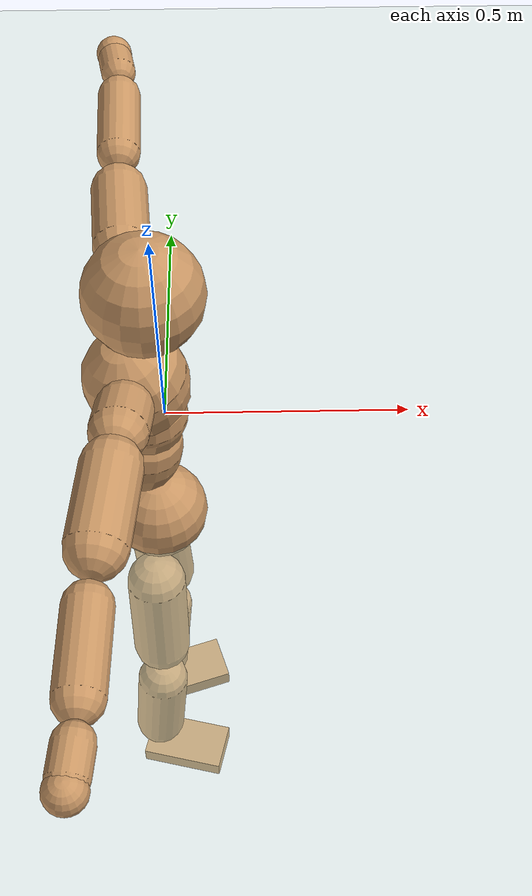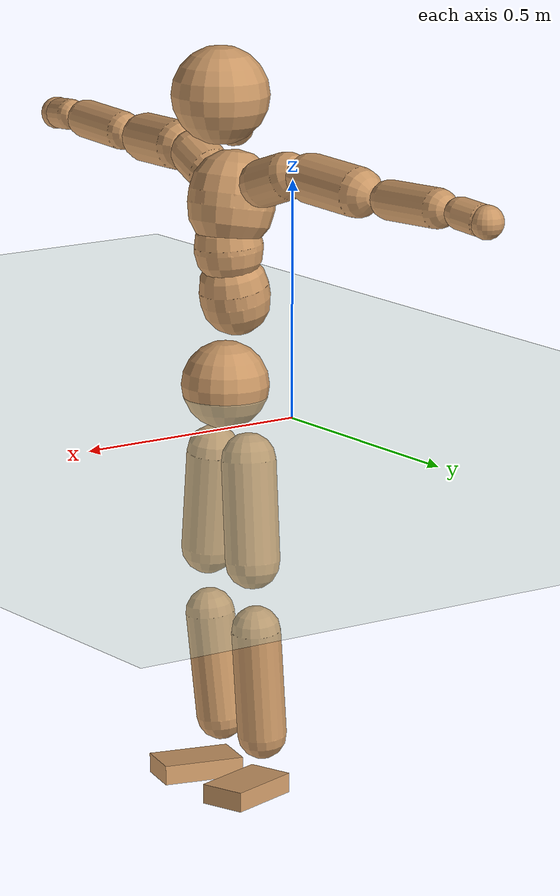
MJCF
<mujoco model="humanoid">
  <compiler coordinate="local"/>
  <default>
    <joint damping="0.0" armature="0.01" stiffness="0.0" limited="true"/>
    <geom conaffinity="1" condim="3" contype="7" margin="0.001" rgba="0.8 0.6 .4 1"/>
  </default>
  <asset>
    <texture type="skybox" builtin="gradient" rgb1=".4 .5 .6" rgb2="0 0 0" width="100" height="100"/>
    <texture builtin="flat" height="1278" mark="cross" markrgb="1 1 1" name="texgeom" random="0.01" rgb1="0.8 0.6 0.4" rgb2="0.8 0.6 0.4" type="cube" width="127"/>
    <texture builtin="checker" height="100" name="texplane" rgb1="0 0 0" rgb2="0.8 0.8 0.8" type="2d" width="100"/>
    <material name="MatPlane" reflectance="0.5" shininess="1" specular="1" texrepeat="60 60" texture="texplane"/>
    <material name="geom" texture="texgeom" texuniform="true"/>
  </asset>
  <worldbody>
    <light cutoff="100" diffuse="1 1 1" dir="-0 0 -1.3" directional="true" exponent="1" pos="0 0 1.3" specular=".1 .1 .1"/>
    <geom conaffinity="1" condim="3" name="floor" pos="0 0 0" rgba="0.8 0.9 0.8 1" size="100 100 .2" type="plane" material="MatPlane"/>
    <body name="Pelvis" pos="-0.0027 -0.25 0.023">
      <freejoint name="Pelvis"/>
      <geom type="sphere" contype="1" conaffinity="1" density="500" size="0.0940" pos="0.0000 0.0000 0.0000" name="Pelvis"/>
      <body name="L_Hip" pos="-0.0178 0.0556 -0.0817">
        <joint name="L_Hip_x" type="hinge" pos="0 0 0" axis="1 0 0" stiffness="800" damping="80" armature="0.02" range="-180.0000 180.0000"/>
        <joint name="L_Hip_y" type="hinge" pos="0 0 0" axis="0 1 0" stiffness="800" damping="80" armature="0.02" range="-180.0000 180.0000"/>
        <joint name="L_Hip_z" type="hinge" pos="0 0 0" axis="0 0 1" stiffness="800" damping="80" armature="0.02" range="-180.0000 180.0000"/>
        <geom type="capsule" contype="1" conaffinity="1" density="500" fromto="0.0019 0.0078 -0.0723 0.0078 0.0310 -0.2893" size="0.0588" name="L_Hip"/>
        <body name="L_Knee" pos="0.0097 0.0388 -0.3616">
          <joint name="L_Knee_x" type="hinge" pos="0 0 0" axis="1 0 0" stiffness="800" damping="80" armature="0.02" range="-180.0000 180.0000"/>
          <joint name="L_Knee_y" type="hinge" pos="0 0 0" axis="0 1 0" stiffness="800" damping="80" armature="0.02" range="-180.0000 180.0000"/>
          <joint name="L_Knee_z" type="hinge" pos="0 0 0" axis="0 0 1" stiffness="800" damping="80" armature="0.02" range="-180.0000 180.0000"/>
          <geom type="capsule" contype="1" conaffinity="1" density="500" fromto="-0.0072 -0.0029 -0.0791 -0.0289 -0.0115 -0.3163" size="0.053" name="L_Knee"/>
          <body name="L_Ankle" pos="-0.0361 -0.0144 -0.3954">
            <joint name="L_Ankle_x" type="hinge" pos="0 0 0" axis="1 0 0" stiffness="800" damping="80" armature="0.02" range="-180.0000 180.0000"/>
            <joint name="L_Ankle_y" type="hinge" pos="0 0 0" axis="0 1 0" stiffness="800" damping="80" armature="0.02" range="-180.0000 180.0000"/>
            <joint name="L_Ankle_z" type="hinge" pos="0 0 0" axis="0 0 1" stiffness="800" damping="80" armature="0.02" range="-180.0000 180.0000"/>
            <geom type="box" contype="1" conaffinity="1" density="500" pos="0.0594 0.0193 -0.0286" size="0.0858 0.0501 0.0213" quat="0.9877 0.0000 0.0000 0.1561" name="L_Ankle"/>
            <body name="L_Toe" pos="0.1189 0.0385 -0.0573">
              <joint name="L_Toe_x" type="hinge" pos="0 0 0" axis="1 0 0" stiffness="500" damping="50" armature="0.02" range="-180.0000 180.0000"/>
              <joint name="L_Toe_y" type="hinge" pos="0 0 0" axis="0 1 0" stiffness="500" damping="50" armature="0.02" range="-180.0000 180.0000"/>
              <joint name="L_Toe_z" type="hinge" pos="0 0 0" axis="0 0 1" stiffness="500" damping="50" armature="0.02" range="-180.0000 180.0000"/>
              <geom type="box" contype="1" conaffinity="1" density="500" pos="0.0000 0.0000 0.0279" size="0.0011 0.0025 0.001" quat="0.9869 0.0000 0.0000 0.1611" name="L_Toe"/>
            </body>
          </body>
        </body>
      </body>
      <body name="R_Hip" pos="-0.0135 -0.0573 -0.0902">
        <joint name="R_Hip_x" type="hinge" pos="0 0 0" axis="1 0 0" stiffness="800" damping="80" armature="0.02" range="-180.0000 180.0000"/>
        <joint name="R_Hip_y" type="hinge" pos="0 0 0" axis="0 1 0" stiffness="800" damping="80" armature="0.02" range="-180.0000 180.0000"/>
        <joint name="R_Hip_z" type="hinge" pos="0 0 0" axis="0 0 1" stiffness="800" damping="80" armature="0.02" range="-180.0000 180.0000"/>
        <geom type="capsule" contype="1" conaffinity="1" density="500" fromto="-0.0005 -0.0078 -0.0716 -0.0018 -0.0311 -0.2866" size="0.0583" name="R_Hip"/>
        <body name="R_Knee" pos="-0.0023 -0.0389 -0.3582">
          <joint name="R_Knee_x" type="hinge" pos="0 0 0" axis="1 0 0" stiffness="800" damping="80" armature="0.02" range="-180.0000 180.0000"/>
          <joint name="R_Knee_y" type="hinge" pos="0 0 0" axis="0 1 0" stiffness="800" damping="80" armature="0.02" range="-180.0000 180.0000"/>
          <joint name="R_Knee_z" type="hinge" pos="0 0 0" axis="0 0 1" stiffness="800" damping="80" armature="0.02" range="-180.0000 180.0000"/>
          <geom type="capsule" contype="1" conaffinity="1" density="500" fromto="-0.0067 0.0037 -0.0777 -0.0267 0.0148 -0.3107" size="0.0534" name="R_Knee"/>
          <body name="R_Ankle" pos="-0.0334 0.0184 -0.3883">
            <joint name="R_Ankle_x" type="hinge" pos="0 0 0" axis="1 0 0" stiffness="800" damping="80" armature="0.02" range="-180.0000 180.0000"/>
            <joint name="R_Ankle_y" type="hinge" pos="0 0 0" axis="0 1 0" stiffness="800" damping="80" armature="0.02" range="-180.0000 180.0000"/>
            <joint name="R_Ankle_z" type="hinge" pos="0 0 0" axis="0 0 1" stiffness="800" damping="80" armature="0.02" range="-180.0000 180.0000"/>
            <geom type="box" contype="1" conaffinity="1" density="500" pos="0.0639 -0.0154 -0.0292" size="0.089 0.0505 0.0211" quat="0.9930 0.0000 0.0000 -0.1178" name="R_Ankle"/>
            <body name="R_Toe" pos="0.1278 -0.0308 -0.0584">
              <joint name="R_Toe_x" type="hinge" pos="0 0 0" axis="1 0 0" stiffness="500" damping="50" armature="0.02" range="-180.0000 180.0000"/>
              <joint name="R_Toe_y" type="hinge" pos="0 0 0" axis="0 1 0" stiffness="500" damping="50" armature="0.02" range="-180.0000 180.0000"/>
              <joint name="R_Toe_z" type="hinge" pos="0 0 0" axis="0 0 1" stiffness="500" damping="50" armature="0.02" range="-180.0000 180.0000"/>
              <geom type="box" contype="1" conaffinity="1" density="500" pos="0.0000 0.0000 0.0301" size="0.0011 0.0025 0.0011" quat="0.9941 0.0000 0.0000 -0.1088" name="R_Toe"/>
            </body>
          </body>
        </body>
      </body>
      <body name="Torso" pos="-0.0341 0.0041 0.1241">
        <joint name="Torso_x" type="hinge" pos="0 0 0" axis="1 0 0" stiffness="1000" damping="100" armature="0.02" range="-180.0000 180.0000"/>
        <joint name="Torso_y" type="hinge" pos="0 0 0" axis="0 1 0" stiffness="1000" damping="100" armature="0.02" range="-180.0000 180.0000"/>
        <joint name="Torso_z" type="hinge" pos="0 0 0" axis="0 0 1" stiffness="1000" damping="100" armature="0.02" range="-180.0000 180.0000"/>
        <geom type="capsule" contype="1" conaffinity="1" density="500" fromto="0.0174 0.0033 0.0854 0.0116 0.0022 0.0569" size="0.074772" name="Torso"/>
        <body name="Spine" pos="0.029 0.0055 0.1423">
          <joint name="Spine_x" type="hinge" pos="0 0 0" axis="1 0 0" stiffness="1000" damping="100" armature="0.02" range="-180.0000 180.0000"/>
          <joint name="Spine_y" type="hinge" pos="0 0 0" axis="0 1 0" stiffness="1000" damping="100" armature="0.02" range="-180.0000 180.0000"/>
          <joint name="Spine_z" type="hinge" pos="0 0 0" axis="0 0 1" stiffness="1000" damping="100" armature="0.02" range="-180.0000 180.0000"/>
          <geom type="capsule" contype="1" conaffinity="1" density="500" fromto="0.0022 -0.0012 0.0347 0.0014 -0.0008 0.0231" size="0.073377" name="Spine"/>
          <body name="Chest" pos="0.0036 -0.002 0.0578">
            <joint name="Chest_x" type="hinge" pos="0 0 0" axis="1 0 0" stiffness="1000" damping="100" armature="0.02" range="-180.0000 180.0000"/>
            <joint name="Chest_y" type="hinge" pos="0 0 0" axis="0 1 0" stiffness="1000" damping="100" armature="0.02" range="-180.0000 180.0000"/>
            <joint name="Chest_z" type="hinge" pos="0 0 0" axis="0 0 1" stiffness="1000" damping="100" armature="0.02" range="-180.0000 180.0000"/>
            <geom type="capsule" contype="1" conaffinity="1" density="500" fromto="-0.0161 -0.0050 0.0859 -0.0108 -0.0033 0.0573" size="0.092814" name="Chest"/>
            <body name="Neck" pos="-0.0347 -0.0134 0.2079">
              <joint name="Neck_x" type="hinge" pos="0 0 0" axis="1 0 0" stiffness="500" damping="50" armature="0.02" range="-180.0000 180.0000"/>
              <joint name="Neck_y" type="hinge" pos="0 0 0" axis="0 1 0" stiffness="500" damping="50" armature="0.02" range="-180.0000 180.0000"/>
              <joint name="Neck_z" type="hinge" pos="0 0 0" axis="0 0 1" stiffness="500" damping="50" armature="0.02" range="-180.0000 180.0000"/>
              <geom type="capsule" contype="1" conaffinity="1" density="500" fromto="0.0099 0.0018 0.0178 0.0395 0.0073 0.0712" size="0.041943" name="Neck"/>
              <body name="Head" pos="0.0493 0.0091 0.0889">
                <joint name="Head_x" type="hinge" pos="0 0 0" axis="1 0 0" stiffness="500" damping="50" armature="0.02" range="-180.0000 180.0000"/>
                <joint name="Head_y" type="hinge" pos="0 0 0" axis="0 1 0" stiffness="500" damping="50" armature="0.02" range="-180.0000 180.0000"/>
                <joint name="Head_z" type="hinge" pos="0 0 0" axis="0 0 1" stiffness="500" damping="50" armature="0.02" range="-180.0000 180.0000"/>
                <geom type="sphere" contype="1" conaffinity="1" density="500" size="0.1041" pos="0.0000 0.0000 0.0000" name="Head"/>
              </body>
            </body>
            <body name="L_Thorax" pos="-0.021 0.0691 0.1115">
              <joint name="L_Thorax_x" type="hinge" pos="0 0 0" axis="1 0 0" stiffness="500" damping="50" armature="0.02" range="-180.0000 180.0000"/>
              <joint name="L_Thorax_y" type="hinge" pos="0 0 0" axis="0 1 0" stiffness="500" damping="50" armature="0.02" range="-180.0000 180.0000"/>
              <joint name="L_Thorax_z" type="hinge" pos="0 0 0" axis="0 0 1" stiffness="500" damping="50" armature="0.02" range="-180.0000 180.0000"/>
              <geom type="capsule" contype="1" conaffinity="1" density="500" fromto="-0.0037 0.0241 0.0085 -0.0147 0.0964 0.0340" size="0.0511" name="L_Thorax"/>
              <body name="L_Shoulder" pos="-0.0184 0.1205 0.0425">
                <joint name="L_Shoulder_x" type="hinge" pos="0 0 0" axis="1 0 0" stiffness="500" damping="50" armature="0.02" range="-720.0000 720.0000"/>
                <joint name="L_Shoulder_y" type="hinge" pos="0 0 0" axis="0 1 0" stiffness="500" damping="50" armature="0.02" range="-720.0000 720.0000"/>
                <joint name="L_Shoulder_z" type="hinge" pos="0 0 0" axis="0 0 1" stiffness="500" damping="50" armature="0.02" range="-720.0000 720.0000"/>
                <geom type="capsule" contype="1" conaffinity="1" density="500" fromto="-0.0040 0.0494 -0.0026 -0.0159 0.1977 -0.0105" size="0.0528" name="L_Shoulder"/>
                <body name="L_Elbow" pos="-0.0199 0.2471 -0.0132">
                  <joint name="L_Elbow_x" type="hinge" pos="0 0 0" axis="1 0 0" stiffness="500" damping="50" armature="0.02" range="-720.0000 720.0000"/>
                  <joint name="L_Elbow_y" type="hinge" pos="0 0 0" axis="0 1 0" stiffness="500" damping="50" armature="0.02" range="-720.0000 720.0000"/>
                  <joint name="L_Elbow_z" type="hinge" pos="0 0 0" axis="0 0 1" stiffness="500" damping="50" armature="0.02" range="-720.0000 720.0000"/>
                  <geom type="capsule" contype="1" conaffinity="1" density="500" fromto="-0.0017 0.0511 0.0022 -0.0068 0.2042 0.0086" size="0.0415" name="L_Elbow"/>
                  <body name="L_Wrist" pos="-0.0085 0.2553 0.0108">
                    <joint name="L_Wrist_x" type="hinge" pos="0 0 0" axis="1 0 0" stiffness="300" damping="30" armature="0.02" range="-180.0000 180.0000"/>
                    <joint name="L_Wrist_y" type="hinge" pos="0 0 0" axis="0 1 0" stiffness="300" damping="30" armature="0.02" range="-180.0000 180.0000"/>
                    <joint name="L_Wrist_z" type="hinge" pos="0 0 0" axis="0 0 1" stiffness="300" damping="30" armature="0.02" range="-180.0000 180.0000"/>
                    <geom type="capsule" contype="1" conaffinity="1" density="500" fromto="-0.0030 0.0170 -0.0021 -0.0122 0.0681 -0.0082" size="0.0337" name="L_Wrist"/>
                    <body name="L_Hand" pos="-0.0152 0.0851 -0.0103">
                      <joint name="L_Hand_x" type="hinge" pos="0 0 0" axis="1 0 0" stiffness="300" damping="30" armature="0.02" range="-180.0000 180.0000"/>
                      <joint name="L_Hand_y" type="hinge" pos="0 0 0" axis="0 1 0" stiffness="300" damping="30" armature="0.02" range="-180.0000 180.0000"/>
                      <joint name="L_Hand_z" type="hinge" pos="0 0 0" axis="0 0 1" stiffness="300" damping="30" armature="0.02" range="-180.0000 180.0000"/>
                      <geom type="sphere" contype="1" conaffinity="1" density="500" size="0.0350" pos="0.0000 0.0000 0.0000" name="L_Hand"/>
                    </body>
                  </body>
                </body>
              </body>
            </body>
            <body name="R_Thorax" pos="-0.025 -0.0807 0.1101">
              <joint name="R_Thorax_x" type="hinge" pos="0 0 0" axis="1 0 0" stiffness="500" damping="50" armature="0.02" range="-180.0000 180.0000"/>
              <joint name="R_Thorax_y" type="hinge" pos="0 0 0" axis="0 1 0" stiffness="500" damping="50" armature="0.02" range="-180.0000 180.0000"/>
              <joint name="R_Thorax_z" type="hinge" pos="0 0 0" axis="0 0 1" stiffness="500" damping="50" armature="0.02" range="-180.0000 180.0000"/>
              <geom type="capsule" contype="1" conaffinity="1" density="500" fromto="-0.0016 -0.0221 0.0086 -0.0062 -0.0886 0.0344" size="0.0512" name="R_Thorax"/>
              <body name="R_Shoulder" pos="-0.0078 -0.1107 0.043">
                <joint name="R_Shoulder_x" type="hinge" pos="0 0 0" axis="1 0 0" stiffness="500" damping="50" armature="0.02" range="-720.0000 720.0000"/>
                <joint name="R_Shoulder_y" type="hinge" pos="0 0 0" axis="0 1 0" stiffness="500" damping="50" armature="0.02" range="-720.0000 720.0000"/>
                <joint name="R_Shoulder_z" type="hinge" pos="0 0 0" axis="0 0 1" stiffness="500" damping="50" armature="0.02" range="-720.0000 720.0000"/>
                <geom type="capsule" contype="1" conaffinity="1" density="500" fromto="-0.0057 -0.0500 -0.0022 -0.0226 -0.2000 -0.0088" size="0.0535" name="R_Shoulder"/>
                <body name="R_Elbow" pos="-0.0283 -0.2501 -0.0109">
                  <joint name="R_Elbow_x" type="hinge" pos="0 0 0" axis="1 0 0" stiffness="500" damping="50" armature="0.02" range="-720.0000 720.0000"/>
                  <joint name="R_Elbow_y" type="hinge" pos="0 0 0" axis="0 1 0" stiffness="500" damping="50" armature="0.02" range="-720.0000 720.0000"/>
                  <joint name="R_Elbow_z" type="hinge" pos="0 0 0" axis="0 0 1" stiffness="500" damping="50" armature="0.02" range="-720.0000 720.0000"/>
                  <geom type="capsule" contype="1" conaffinity="1" density="500" fromto="-0.0012 -0.0518 0.0013 -0.0050 -0.2072 0.0054" size="0.0423" name="R_Elbow"/>
                  <body name="R_Wrist" pos="-0.0062 -0.259 0.0067">
                    <joint name="R_Wrist_x" type="hinge" pos="0 0 0" axis="1 0 0" stiffness="300" damping="30" armature="0.02" range="-180.0000 180.0000"/>
                    <joint name="R_Wrist_y" type="hinge" pos="0 0 0" axis="0 1 0" stiffness="300" damping="30" armature="0.02" range="-180.0000 180.0000"/>
                    <joint name="R_Wrist_z" type="hinge" pos="0 0 0" axis="0 0 1" stiffness="300" damping="30" armature="0.02" range="-180.0000 180.0000"/>
                    <geom type="capsule" contype="1" conaffinity="1" density="500" fromto="-0.0020 -0.0174 -0.0017 -0.0078 -0.0698 -0.0067" size="0.0344" name="R_Wrist"/>
                    <body name="R_Hand" pos="-0.0098 -0.0872 -0.0084">
                      <joint name="R_Hand_x" type="hinge" pos="0 0 0" axis="1 0 0" stiffness="300" damping="30" armature="0.02" range="-180.0000 180.0000"/>
                      <joint name="R_Hand_y" type="hinge" pos="0 0 0" axis="0 1 0" stiffness="300" damping="30" armature="0.02" range="-180.0000 180.0000"/>
                      <joint name="R_Hand_z" type="hinge" pos="0 0 0" axis="0 0 1" stiffness="300" damping="30" armature="0.02" range="-180.0000 180.0000"/>
                      <geom type="sphere" contype="1" conaffinity="1" density="500" size="0.0355" pos="0.0000 0.0000 0.0000" name="R_Hand"/>
                    </body>
                  </body>
                </body>
              </body>
            </body>
          </body>
        </body>
      </body>
    </body>
  </worldbody>
  <actuator>
    <motor name="L_Hip_x" joint="L_Hip_x" gear="500"/>
    <motor name="L_Hip_y" joint="L_Hip_y" gear="500"/>
    <motor name="L_Hip_z" joint="L_Hip_z" gear="500"/>
    <motor name="L_Knee_x" joint="L_Knee_x" gear="500"/>
    <motor name="L_Knee_y" joint="L_Knee_y" gear="500"/>
    <motor name="L_Knee_z" joint="L_Knee_z" gear="500"/>
    <motor name="L_Ankle_x" joint="L_Ankle_x" gear="500"/>
    <motor name="L_Ankle_y" joint="L_Ankle_y" gear="500"/>
    <motor name="L_Ankle_z" joint="L_Ankle_z" gear="500"/>
    <motor name="L_Toe_x" joint="L_Toe_x" gear="500"/>
    <motor name="L_Toe_y" joint="L_Toe_y" gear="500"/>
    <motor name="L_Toe_z" joint="L_Toe_z" gear="500"/>
    <motor name="R_Hip_x" joint="R_Hip_x" gear="500"/>
    <motor name="R_Hip_y" joint="R_Hip_y" gear="500"/>
    <motor name="R_Hip_z" joint="R_Hip_z" gear="500"/>
    <motor name="R_Knee_x" joint="R_Knee_x" gear="500"/>
    <motor name="R_Knee_y" joint="R_Knee_y" gear="500"/>
    <motor name="R_Knee_z" joint="R_Knee_z" gear="500"/>
    <motor name="R_Ankle_x" joint="R_Ankle_x" gear="500"/>
    <motor name="R_Ankle_y" joint="R_Ankle_y" gear="500"/>
    <motor name="R_Ankle_z" joint="R_Ankle_z" gear="500"/>
    <motor name="R_Toe_x" joint="R_Toe_x" gear="500"/>
    <motor name="R_Toe_y" joint="R_Toe_y" gear="500"/>
    <motor name="R_Toe_z" joint="R_Toe_z" gear="500"/>
    <motor name="Torso_x" joint="Torso_x" gear="500"/>
    <motor name="Torso_y" joint="Torso_y" gear="500"/>
    <motor name="Torso_z" joint="Torso_z" gear="500"/>
    <motor name="Spine_x" joint="Spine_x" gear="500"/>
    <motor name="Spine_y" joint="Spine_y" gear="500"/>
    <motor name="Spine_z" joint="Spine_z" gear="500"/>
    <motor name="Chest_x" joint="Chest_x" gear="500"/>
    <motor name="Chest_y" joint="Chest_y" gear="500"/>
    <motor name="Chest_z" joint="Chest_z" gear="500"/>
    <motor name="Neck_x" joint="Neck_x" gear="500"/>
    <motor name="Neck_y" joint="Neck_y" gear="500"/>
    <motor name="Neck_z" joint="Neck_z" gear="500"/>
    <motor name="Head_x" joint="Head_x" gear="500"/>
    <motor name="Head_y" joint="Head_y" gear="500"/>
    <motor name="Head_z" joint="Head_z" gear="500"/>
    <motor name="L_Thorax_x" joint="L_Thorax_x" gear="500"/>
    <motor name="L_Thorax_y" joint="L_Thorax_y" gear="500"/>
    <motor name="L_Thorax_z" joint="L_Thorax_z" gear="500"/>
    <motor name="L_Shoulder_x" joint="L_Shoulder_x" gear="500"/>
    <motor name="L_Shoulder_y" joint="L_Shoulder_y" gear="500"/>
    <motor name="L_Shoulder_z" joint="L_Shoulder_z" gear="500"/>
    <motor name="L_Elbow_x" joint="L_Elbow_x" gear="500"/>
    <motor name="L_Elbow_y" joint="L_Elbow_y" gear="500"/>
    <motor name="L_Elbow_z" joint="L_Elbow_z" gear="500"/>
    <motor name="L_Wrist_x" joint="L_Wrist_x" gear="500"/>
    <motor name="L_Wrist_y" joint="L_Wrist_y" gear="500"/>
    <motor name="L_Wrist_z" joint="L_Wrist_z" gear="500"/>
    <motor name="L_Hand_x" joint="L_Hand_x" gear="500"/>
    <motor name="L_Hand_y" joint="L_Hand_y" gear="500"/>
    <motor name="L_Hand_z" joint="L_Hand_z" gear="500"/>
    <motor name="R_Thorax_x" joint="R_Thorax_x" gear="500"/>
    <motor name="R_Thorax_y" joint="R_Thorax_y" gear="500"/>
    <motor name="R_Thorax_z" joint="R_Thorax_z" gear="500"/>
    <motor name="R_Shoulder_x" joint="R_Shoulder_x" gear="500"/>
    <motor name="R_Shoulder_y" joint="R_Shoulder_y" gear="500"/>
    <motor name="R_Shoulder_z" joint="R_Shoulder_z" gear="500"/>
    <motor name="R_Elbow_x" joint="R_Elbow_x" gear="500"/>
    <motor name="R_Elbow_y" joint="R_Elbow_y" gear="500"/>
    <motor name="R_Elbow_z" joint="R_Elbow_z" gear="500"/>
    <motor name="R_Wrist_x" joint="R_Wrist_x" gear="500"/>
    <motor name="R_Wrist_y" joint="R_Wrist_y" gear="500"/>
    <motor name="R_Wrist_z" joint="R_Wrist_z" gear="500"/>
    <motor name="R_Hand_x" joint="R_Hand_x" gear="500"/>
    <motor name="R_Hand_y" joint="R_Hand_y" gear="500"/>
    <motor name="R_Hand_z" joint="R_Hand_z" gear="500"/>
  </actuator>
  <contact>
    <exclude body1="Torso" body2="Chest"/>
    <exclude body1="Head" body2="Chest"/>
    <exclude body1="R_Knee" body2="R_Toe"/>
    <exclude body1="R_Knee" body2="L_Ankle"/>
    <exclude body1="R_Knee" body2="L_Toe"/>
    <exclude body1="L_Knee" body2="L_Toe"/>
    <exclude body1="L_Knee" body2="R_Ankle"/>
    <exclude body1="L_Knee" body2="R_Toe"/>
    <exclude body1="L_Shoulder" body2="Chest"/>
    <exclude body1="R_Shoulder" body2="Chest"/>
  </contact>
  <sensor/>
  <size njmax="700" nconmax="700"/>
</mujoco>
